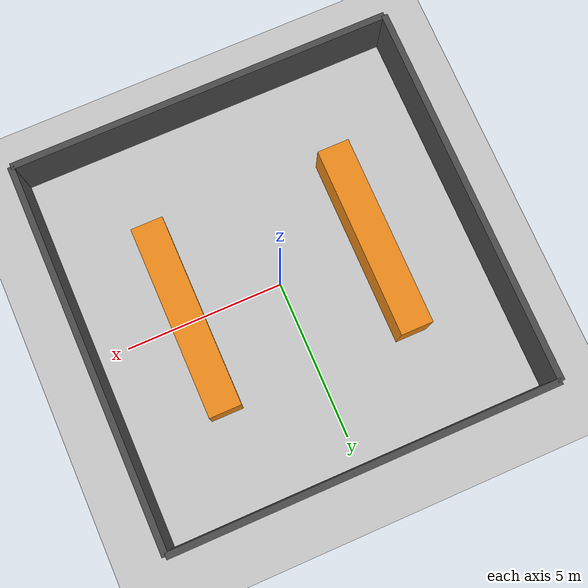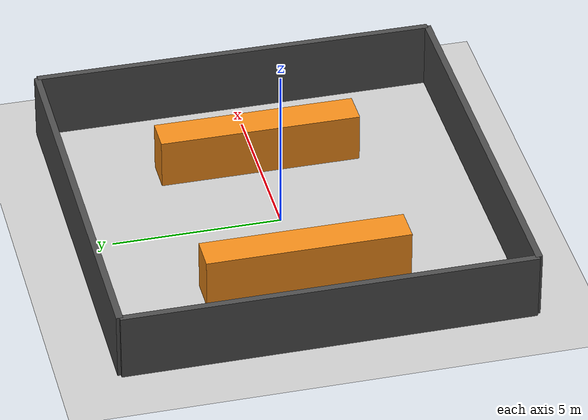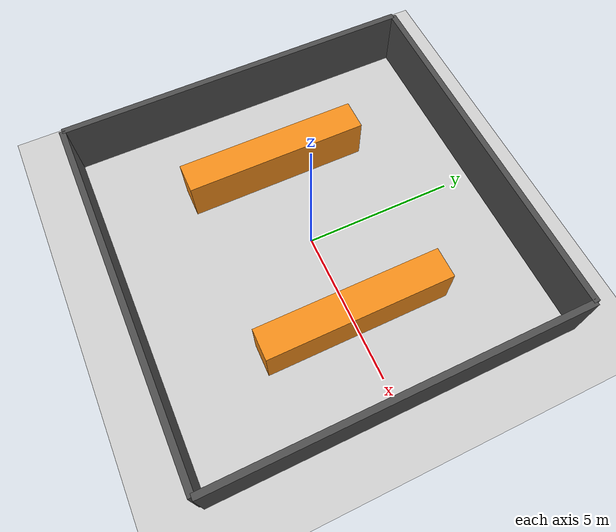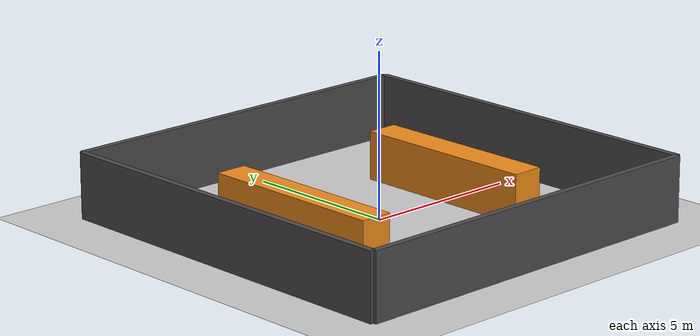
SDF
<?xml version="1.0"?>
<sdf version="1.6">
  <world name="simple_warehouse">

    <!-- Ground Plane -->
    <include>
      <uri>model://ground_plane</uri>
    </include>

    <!-- Sun Light Source -->
    <include>
      <uri>model://sun</uri>
    </include>

    <scene>
      <shadows>false</shadows>
      <ambient>0.6 0.6 0.6 1.0</ambient>
      <background>0.8 0.8 0.8 1.0</background>
    </scene>

    <gui fullscreen='0'>
      <camera name='user_camera'>
        <pose frame=''>0.0 0.0 12.0 0 1.5708 1.5708</pose>
        <view_controller>orbit</view_controller>
        <projection_type>perspective</projection_type>
      </camera>
    </gui>

    <physics type="ode">
      <real_time_update_rate>1000.0</real_time_update_rate>
      <max_step_size>0.001</max_step_size>
      <real_time_factor>1.0</real_time_factor>
      <ode>
        <solver>
          <type>quick</type>
          <iters>150</iters>
          <sor>1.400000</sor>
        </solver>
        <constraints>
          <cfm>0.00001</cfm>
          <erp>0.2</erp>
        </constraints>
      </ode>
    </physics>

    <!-- Outer Warehouse Enclosure Walls -->
    <model name="warehouse_walls">
      <static>true</static>
      <!-- North Wall -->
      <link name="wall_north">
        <pose>0 6 1 0 0 0</pose>
        <collision name="collision"><geometry><box><size>12 0.2 2</size></box></geometry></collision>
        <visual name="visual">
          <geometry><box><size>12 0.2 2</size></box></geometry>
          <material><script><uri>file://media/materials/scripts/gazebo.material</uri><name>Gazebo/DarkGrey</name></script></material>
        </visual>
      </link>
      <!-- South Wall -->
      <link name="wall_south">
        <pose>0 -6 1 0 0 0</pose>
        <collision name="collision"><geometry><box><size>12 0.2 2</size></box></geometry></collision>
        <visual name="visual">
          <geometry><box><size>12 0.2 2</size></box></geometry>
          <material><script><uri>file://media/materials/scripts/gazebo.material</uri><name>Gazebo/DarkGrey</name></script></material>
        </visual>
      </link>
      <!-- East Wall -->
      <link name="wall_east">
        <pose>6 0 1 0 0 1.5708</pose>
        <collision name="collision"><geometry><box><size>12 0.2 2</size></box></geometry></collision>
        <visual name="visual">
          <geometry><box><size>12 0.2 2</size></box></geometry>
          <material><script><uri>file://media/materials/scripts/gazebo.material</uri><name>Gazebo/DarkGrey</name></script></material>
        </visual>
      </link>
      <!-- West Wall -->
      <link name="wall_west">
        <pose>-6 0 1 0 0 1.5708</pose>
        <collision name="collision"><geometry><box><size>12 0.2 2</size></box></geometry></collision>
        <visual name="visual">
          <geometry><box><size>12 0.2 2</size></box></geometry>
          <material><script><uri>file://media/materials/scripts/gazebo.material</uri><name>Gazebo/DarkGrey</name></script></material>
        </visual>
      </link>
    </model>

    <!-- Warehouse Storage Rack 1 (Aisle Left) -->
    <model name="rack_1">
      <static>true</static>
      <pose>-3.0 0.0 0.75 0 0 0</pose>
      <link name="link">
        <collision name="collision">
          <geometry><box><size>1.0 6.0 1.5</size></box></geometry>
        </collision>
        <visual name="visual">
          <geometry><box><size>1.0 6.0 1.5</size></box></geometry>
          <material>
            <script><uri>file://media/materials/scripts/gazebo.material</uri><name>Gazebo/Orange</name></script>
          </material>
        </visual>
      </link>
    </model>

    <!-- Warehouse Storage Rack 2 (Aisle Right) -->
    <model name="rack_2">
      <static>true</static>
      <pose>3.0 0.0 0.75 0 0 0</pose>
      <link name="link">
        <collision name="collision">
          <geometry><box><size>1.0 6.0 1.5</size></box></geometry>
        </collision>
        <visual name="visual">
          <geometry><box><size>1.0 6.0 1.5</size></box></geometry>
          <material>
            <script><uri>file://media/materials/scripts/gazebo.material</uri><name>Gazebo/Orange</name></script>
          </material>
        </visual>
      </link>
    </model>

  </world>
</sdf>
